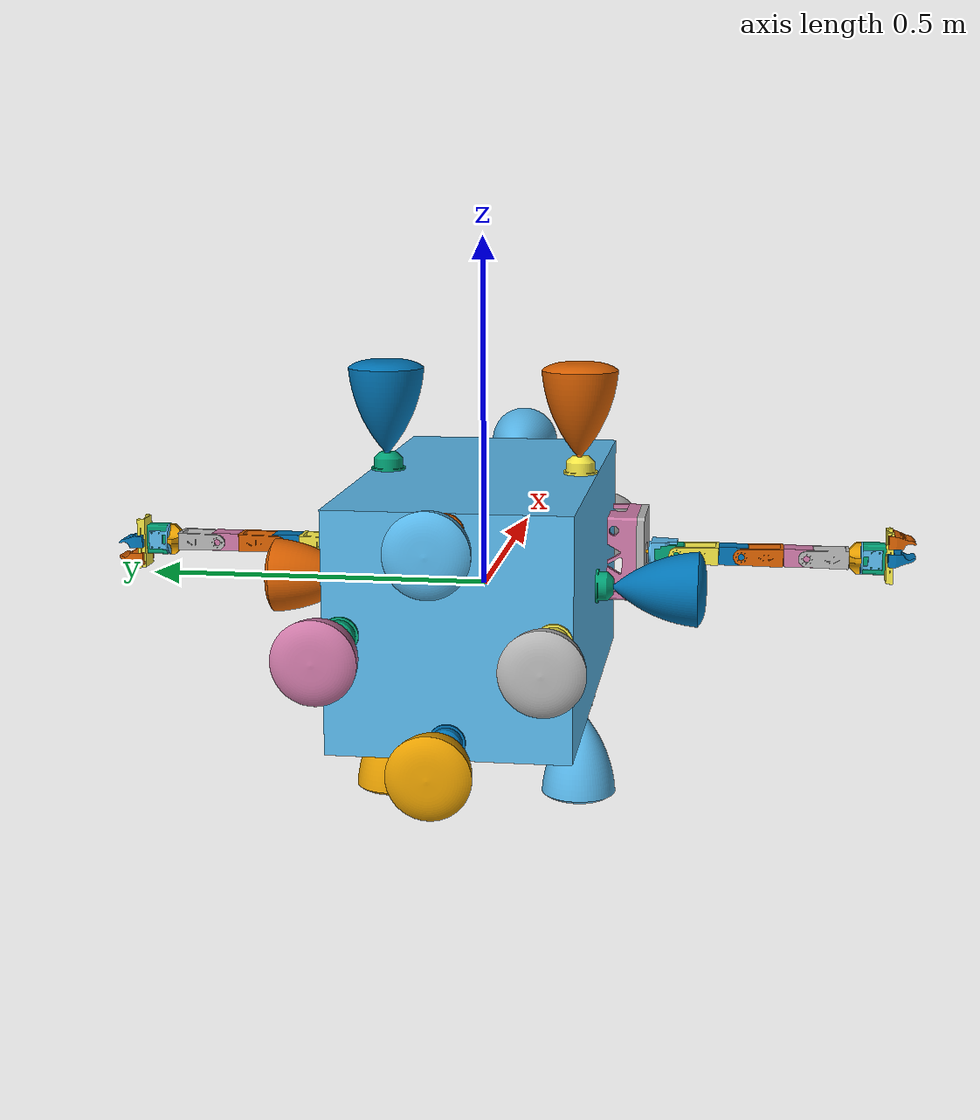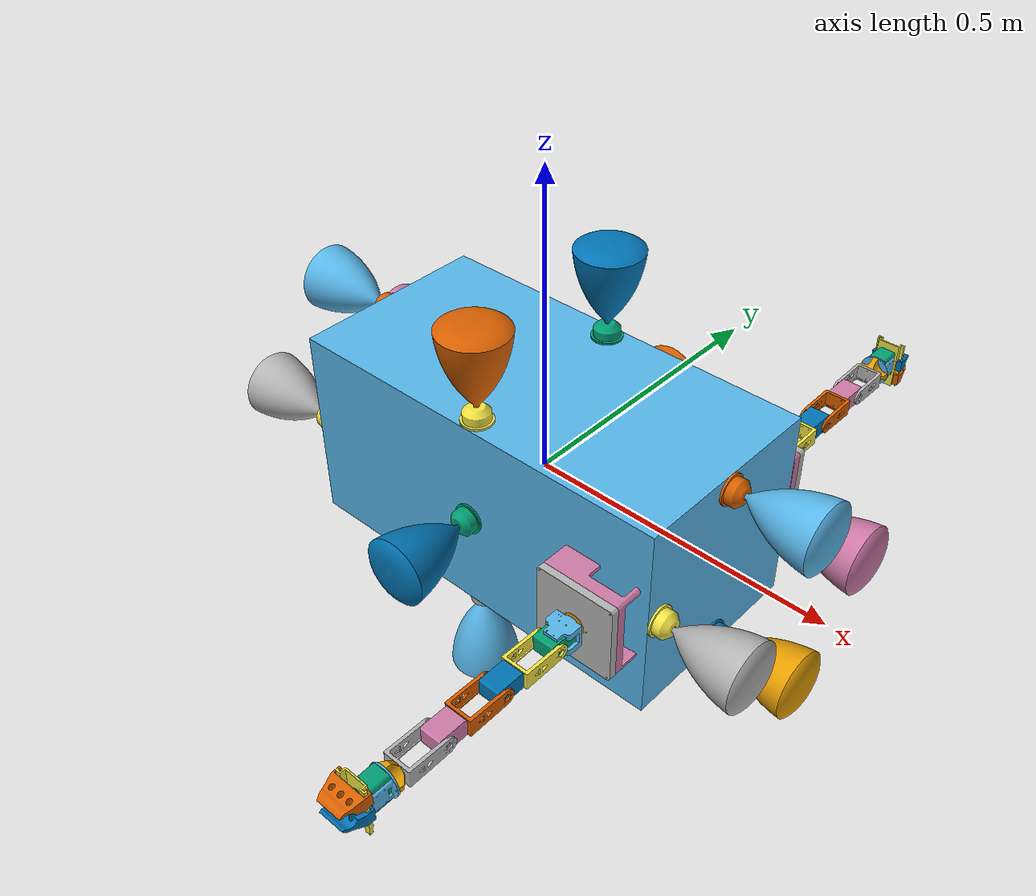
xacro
<?xml version="1.0"?>
<robot xmlns:xacro="http://wiki.ros.org/xacro" name="polysat">
  <xacro:arg name="namespace" default="polysat"/>
  <xacro:arg name="debug" default="false"/>
  <xacro:arg name="inertial_reference_frame" default="world"/>
  <xacro:arg name="controller_type" default="effort"/>
  <xacro:property name="controller" value="$(arg controller_type)"/>

  <xacro:include filename="$(find polysat_perseus_description)/urdf/polysat_base.xacro"/>
  <xacro:polysat_base namespace="$(arg namespace)"/>

  <!-- perseus -->
  <xacro:include filename="$(find perseus_description)/urdf/perseus.urdf.xacro"/>

    <xacro:arg name="transmission_hw_interface" default="hardware_interface/EffortJointInterface"/>

  <xacro:perseus_arm transmission_hw_interface="$(arg transmission_hw_interface)" namespace="perseus_r"/>
  <xacro:perseus_arm transmission_hw_interface="$(arg transmission_hw_interface)" namespace="perseus_l"/>

  <joint name="perseus_l_anchor" type="fixed">
    <parent link="$(arg namespace)/base_link"/>
    <child link="perseus_l/base"/>
    <origin rpy="0 -3.14159265 0" xyz="0.25 0.15 -0.00"/>
  </joint>
  <joint name="perseus_r_anchor" type="fixed">
    <parent link="$(arg namespace)/base_link"/>
    <child link="perseus_r/base"/>
    <origin rpy="3.14159265 3.14159265 0" xyz="0.25 -0.15 -0.00"/>
  </joint>

</robot>

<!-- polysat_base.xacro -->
<robot name="polysat" xmlns:xacro="https://www.ros.org/wiki/xacro">

  <xacro:arg name="namespace" default="polysat"/>

  <xacro:include filename="$(find polysat_perseus_description)/urdf/polysat_thrusters.xacro"/>
  <xacro:include filename="$(find polysat_perseus_description)/urdf/polysat_thruster_visuals.xacro"/>

  <xacro:macro name="polysat_base" params="namespace">
    <xacro:property name="sf" value="0.33"/>
    <!-- "Dummy base link to eliminate root link inertia warning -->
    <link name="$(arg namespace)/base_link"/>

    <!-- Start of main robot body -->
    <link name="$(arg namespace)/polysat_link">
      <inertial>
        <origin xyz="0 0 0" rpy="0 0 0"/>
        <mass value="50.0"/>
        <inertia
          ixx="10.0" ixy="0.0" ixz="0.0"
          iyy="10.0" iyz="0.0"
          izz="10.0"/>
      </inertial>
      <visual>
        <origin xyz="${sf*0} ${sf*0} ${sf*0}" rpy="0 0 0"/>
        <geometry>
          <box size="${sf*2} ${sf*1} ${sf*1}"/>
        </geometry>
      </visual>
      <collision>
        <origin xyz="${sf*0} ${sf*0} ${sf*0}" rpy="0 0 0"/>
        <geometry>
          <box size="${sf*2} ${sf*1} ${sf*1}"/>
        </geometry>
      </collision>
    </link>

    <!-- Connect dummy link to main link -->
    <joint name="$(arg namespace)/polysat_base_joint" type="fixed">
      <origin xyz="0 0 0" rpy="0 0 0"/>
      <parent link="$(arg namespace)/base_link"/>
      <child link="$(arg namespace)/polysat_link"/>
    </joint>

    <!-- Add thruster visuals -->
    <!-- Top -->
    <xacro:thruster_visual_macro namespace="$(arg namespace)" thruster_id="5" sfac="${sf}" x="${sf*-0.075}" y="${sf*(0.5-0.15)}" z="${sf*0.5}" R="0" P="0" Y="0"/>
    <xacro:thruster_visual_macro namespace="$(arg namespace)" thruster_id="4" sfac="${sf}" x="${sf*-0.075}" y="${sf*-0.5}" z="${sf*0.5}" R="0" P="0" Y="0"/>
    <xacro:thrust_plume_visual_macro namespace="$(arg namespace)" thruster_id="6" sfac="${sf}" x="${sf*-0.17}" y="${sf*0.595}" z="${sf*0.55}" R="${pi/2}" P="0" Y="0"/>
    <xacro:thrust_plume_visual_macro namespace="$(arg namespace)" thruster_id="7" sfac="${sf}" x="${sf*-0.17}" y="${sf*-0.255}" z="${sf*0.55}" R="${pi/2}" P="0" Y="0"/>
    <!-- Bottom -->
    <xacro:thruster_visual_macro namespace="$(arg namespace)" thruster_id="6" sfac="${sf}" x="${sf*-0.15/2}" y="${sf*0.5}" z="${sf*-0.5}" R="${pi}" P="0" Y="0"/>
    <xacro:thruster_visual_macro namespace="$(arg namespace)" thruster_id="7" sfac="${sf}" x="${sf*-0.15/2}" y="${sf*(-0.5+0.15)}" z="${sf*-0.5}" R="${pi}" P="0" Y="0"/>
    <xacro:thrust_plume_visual_macro namespace="$(arg namespace)" thruster_id="5" sfac="${sf}" x="${sf*-0.17}" y="${sf*0.255}" z="${sf*-0.55}" R="${-pi/2}" P="0" Y="0"/>
    <xacro:thrust_plume_visual_macro namespace="$(arg namespace)" thruster_id="4" sfac="${sf}" x="${sf*-0.17}" y="${sf*-0.595}" z="${sf*-0.55}" R="${-pi/2}" P="0" Y="0"/>
    <!-- Front -->
    <xacro:thruster_visual_macro namespace="$(arg namespace)" thruster_id="8" sfac="${sf}" x="${sf*1}" y="${sf*(0.5-0.15)}" z="${sf*(0+0.075)}" R="0" P="${pi/2}" Y="0"/>
    <xacro:thruster_visual_macro namespace="$(arg namespace)" thruster_id="9" sfac="${sf}" x="${sf*1}" y="${sf*-0.5}" z="${sf*(0+0.075)}" R="${0}" P="${pi/2}" Y="0"/>
    <xacro:thruster_visual_macro namespace="$(arg namespace)" thruster_id="1" sfac="${sf}" x="${sf*1}" y="${sf*-0.15/2}" z="${sf*(-0.5+0.15)}" R="${0}" P="${pi/2}" Y="0"/>
    <xacro:thruster_visual_macro namespace="$(arg namespace)" thruster_id="0" sfac="${sf}" x="${sf*1}" y="${sf*-0.15/2}" z="${sf*0.5}" R="${0}" P="${pi/2}" Y="0"/>
    <xacro:thrust_plume_visual_macro namespace="$(arg namespace)" thruster_id="10" sfac="${sf}" x="${sf*1.05}" y="${sf*0.595}" z="${sf*-0.16}" R="${0}" P="0" Y="${-pi/2}"/>
    <xacro:thrust_plume_visual_macro namespace="$(arg namespace)" thruster_id="11" sfac="${sf}" x="${sf*1.05}" y="${sf*-0.26}" z="${sf*-0.17}" R="${0}" P="0" Y="${-pi/2}"/>
    <xacro:thrust_plume_visual_macro namespace="$(arg namespace)" thruster_id="3" sfac="${sf}" x="${sf*1.05}" y="${sf*0.17}" z="${sf*-0.59}" R="${0}" P="0" Y="${-pi/2}"/>
    <xacro:thrust_plume_visual_macro namespace="$(arg namespace)" thruster_id="2" sfac="${sf}" x="${sf*1.05}" y="${sf*0.17}" z="${sf*0.26}" R="${0}" P="0" Y="${-pi/2}"/>
    <!-- Back -->
    <xacro:thruster_visual_macro namespace="$(arg namespace)" thruster_id="10" sfac="${sf}" x="${sf*-1}" y="${sf*(0.5-0.15)}" z="${sf*(0-0.075)}" R="0" P="${-pi/2}" Y="0"/>
    <xacro:thruster_visual_macro namespace="$(arg namespace)" thruster_id="11" sfac="${sf}" x="${sf*-1}" y="${sf*-0.5}" z="${sf*(0-0.075)}" R="${0}" P="${-pi/2}" Y="0"/>
    <xacro:thruster_visual_macro namespace="$(arg namespace)" thruster_id="3" sfac="${sf}" x="${sf*-1}" y="${sf*(0-0.075)}" z="${sf*-0.5}" R="${0}" P="${-pi/2}" Y="0"/>
    <xacro:thruster_visual_macro namespace="$(arg namespace)" thruster_id="2" sfac="${sf}" x="${sf*-1}" y="${sf*(0-0.075)}" z="${sf*(0.5-0.15)}" R="${0}" P="${-pi/2}" Y="0"/>
    <xacro:thrust_plume_visual_macro namespace="$(arg namespace)" thruster_id="8" sfac="${sf}" x="${sf*-1.05}" y="${sf*0.26}" z="${sf*-0.16}" R="${0}" P="0" Y="${pi/2}"/>
    <xacro:thrust_plume_visual_macro namespace="$(arg namespace)" thruster_id="9" sfac="${sf}" x="${sf*-1.05}" y="${sf*-0.595}" z="${sf*-0.17}" R="${0}" P="0" Y="${pi/2}"/>
    <xacro:thrust_plume_visual_macro namespace="$(arg namespace)" thruster_id="1" sfac="${sf}" x="${sf*-1.05}" y="${sf*-0.17}" z="${sf*-0.59}" R="${0}" P="0" Y="${pi/2}"/>
    <xacro:thrust_plume_visual_macro namespace="$(arg namespace)" thruster_id="0" sfac="${sf}" x="${sf*-1.05}" y="${sf*-0.17}" z="${sf*0.26}" R="${0}" P="0" Y="${pi/2}"/>
    <!-- Sides -->
    <xacro:thruster_visual_macro namespace="$(arg namespace)" thruster_id="12" sfac="${sf}" x="${sf*-0.15/2}" y="${sf*-0.5}" z="${sf*-0.15/2}" R="${pi/2}" P="${0}" Y="0"/>
    <xacro:thruster_visual_macro namespace="$(arg namespace)" thruster_id="13" sfac="${sf}" x="${sf*-0.15/2}" y="${sf*0.5}" z="${sf*0.15/2}" R="${-pi/2}" P="${0}" Y="${0}"/>
    <xacro:thrust_plume_visual_macro namespace="$(arg namespace)" thruster_id="12" sfac="${sf}" x="${sf*0.17}" y="${sf*-0.55}" z="${sf*-0.17}" R="${0}" P="0" Y="${pi}"/>
    <xacro:thrust_plume_visual_macro namespace="$(arg namespace)" thruster_id="13" sfac="${sf}" x="${sf*0.17}" y="${sf*0.55}" z="${sf*0.17}" R="${0}" P="${pi}" Y="${0}"/>

    <!-- Add maneuvering thrusters -->
    <xacro:thruster_macro namespace="${namespace}" thruster_id="0">
      <origin xyz="0.5 0 0.5" rpy="0 0 0"/>
    </xacro:thruster_macro>
    <xacro:thruster_macro namespace="${namespace}" thruster_id="1">
      <origin xyz="0.5 0 -0.5" rpy="0 0 0"/>
    </xacro:thruster_macro>
    <xacro:thruster_macro namespace="${namespace}" thruster_id="2">
      <origin xyz="-0.5 0 0.5" rpy="0 0 3.1415926535"/>
    </xacro:thruster_macro>
    <xacro:thruster_macro namespace="${namespace}" thruster_id="3">
      <origin xyz="-0.5 0 -0.5" rpy="0 0 3.1415926535"/>
    </xacro:thruster_macro>

    <xacro:thruster_macro namespace="${namespace}" thruster_id="4">
      <origin xyz="0 0.5 0.5" rpy="0 -1.5707963268 0"/>
    </xacro:thruster_macro>
    <xacro:thruster_macro namespace="${namespace}" thruster_id="5">
      <origin xyz="0 -0.5 0.5" rpy="0 -1.5707963268 0"/>
    </xacro:thruster_macro>
    <xacro:thruster_macro namespace="${namespace}" thruster_id="6">
      <origin xyz="0 0.5 -0.5" rpy="0 1.5707963268 0"/>
    </xacro:thruster_macro>
    <xacro:thruster_macro namespace="${namespace}" thruster_id="7">
      <origin xyz="0 -0.5 -0.5" rpy="0 1.5707963268 0"/>
    </xacro:thruster_macro>

    <xacro:thruster_macro namespace="${namespace}" thruster_id="8">
      <origin xyz="0.5 0.5 0" rpy="0 0 0"/>
    </xacro:thruster_macro>
    <xacro:thruster_macro namespace="${namespace}" thruster_id="9">
      <origin xyz="0.5 -0.5 0" rpy="0 0 0"/>
    </xacro:thruster_macro>
    <xacro:thruster_macro namespace="${namespace}" thruster_id="10">
      <origin xyz="-0.5 0.5 0" rpy="0 0 3.1415926535"/>
    </xacro:thruster_macro>
    <xacro:thruster_macro namespace="${namespace}" thruster_id="11">
      <origin xyz="-0.5 -0.5 0" rpy="0 0 3.1415926535"/>
    </xacro:thruster_macro>

    <xacro:thruster_macro namespace="${namespace}" thruster_id="12">
      <origin xyz="0 0.5 0" rpy="0 0 1.5707963268"/>
    </xacro:thruster_macro>
    <xacro:thruster_macro namespace="${namespace}" thruster_id="13">
      <origin xyz="0 -0.5 0" rpy="0 0 -1.5707963268"/>
    </xacro:thruster_macro>

    <gazebo>
      <plugin name="gazebo_ros_control" filename="libgazebo_ros_control.so">
      </plugin>
    </gazebo>

    <xacro:arg name="inertial_reference_frame" default="world"/>

    <xacro:include filename="$(find sc_gazebo_plugins)/urdf/imu.xacro"/>
    <xacro:default_imu_macro
      namespace="$(arg namespace)"
      parent_link="$(arg namespace)/base_link"
      inertial_reference_frame="$(arg inertial_reference_frame)">
      <origin xyz="0 0 0" rpy="0 0 0"/>
    </xacro:default_imu_macro>

    <xacro:include filename="$(find sc_gazebo_plugins)/urdf/pose_3d.xacro"/>
    <xacro:default_pose_3d
      namespace="$(arg namespace)"
      parent_link="$(arg namespace)/base_link">
    </xacro:default_pose_3d>
   </xacro:macro>
</robot>

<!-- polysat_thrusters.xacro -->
<robot xmlns:xacro="http://www.ros.org/wiki/xacro">

  <xacro:macro name="thruster_macro" params="namespace thruster_id *origin">
    <link name="${namespace}/thruster_${thruster_id}">
      <xacro:box_inertial x="0.001" y="0.001" z="0.001" mass="0.0001">
        <origin xyz="0 0 0" rpy="0 0 0"/>
      </xacro:box_inertial>
      <visual>
        <geometry>
          <cylinder length="0.000001" radius="0.0000001"/>
        </geometry>
        <origin rpy="0 0 0" xyz="0 0 0"/>
      </visual>
      <collision>
        <geometry>
          <cylinder length="0.0000001" radius="0.0000001"/>
        </geometry>
        <origin xyz="0 0 0" rpy="0 0 0"/>
      </collision>
    </link>

    <joint name="${namespace}/thruster_${thruster_id}_joint" type="continuous">
      <xacro:insert_block name="origin"/>
      <parent link="${namespace}/base_link"/>
      <child link="${namespace}/thruster_${thruster_id}"/>
      <axis xyz="1 0 0"/>
      <limit effort="0" lower="0" upper="0" velocity="0"/>
    </joint>

    <gazebo>
      <plugin name="${namespace}_${thruster_id}_thruster_model" filename="libsc_gazebo_thrust_plugin.so">
        <thruster>
          <linkName>${namespace}/thruster_${thruster_id}</linkName>
          <jointName>${namespace}/thruster_${thruster_id}_joint</jointName>
          <cmdTopic>${namespace}/thrusters/thruster_${thruster_id}</cmdTopic>
          <angleTopic>${namespace}/thrusters/thruster_${thruster_id}_angle</angleTopic>
          <enableAngle>false</enableAngle>
        </thruster>
      </plugin>
    </gazebo>

    <gazebo reference="${namespace}/thruster_${thruster_id}">
      <selfCollide>false</selfCollide>
    </gazebo>
  </xacro:macro>

  <xacro:macro name="box_inertial" params="x y z mass *origin">
    <inertial>
      <mass value="${mass}"/>
      <xacro:insert_block name="origin"/>
      <inertia ixx="0.00001" ixy="0.0" ixz="0.0"
               iyy="0.00001" iyz="0.0"
               izz="0.00001"/>
    </inertial>
  </xacro:macro>
</robot>

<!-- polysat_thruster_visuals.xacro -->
<robot xmlns:xacro="http://www.ros.org/wiki/xacro">

  <xacro:macro name="thruster_visual_macro" params="namespace thruster_id sfac x y z R P Y">
    <link name="${namespace}/thruster_${thruster_id}_visual">
      <xacro:box_inertial x="0.001" y="0.001" z="0.001" mass="0.0001">
        <origin xyz="0 0 0" rpy="0 0 0"/>
      </xacro:box_inertial>
      <visual>
        <origin xyz="0 0 0" rpy="0 0 0"/>
        <geometry>
          <mesh filename="file://$(find polysat_description)/meshes/thruster.stl" scale="${sfac*0.001} ${sfac*0.001} ${sfac*0.001}"/>
        </geometry>
      </visual>
      <collision>
        <origin xyz="0 0 0" rpy="0 0 0"/>
        <geometry>
          <mesh filename="file://$(find polysat_description)/meshes/thruster.stl" scale="${sfac*0.001} ${sfac*0.001} ${sfac*0.001}"/>
        </geometry>
      </collision>
    </link>

    <joint name="${namespace}/thruster_${thruster_id}_visual_joint" type="fixed">
      <origin xyz="${x} ${y} ${z}" rpy="${R} ${P} ${Y}"/>
      <parent link="${namespace}/base_link"/>
      <child link="${namespace}/thruster_${thruster_id}_visual"/>
    </joint>
  </xacro:macro>

  <xacro:macro name="thrust_plume_visual_macro" params="namespace thruster_id sfac x y z R P Y">
    <link name="${namespace}/thrust_plume_${thruster_id}_visual">
      <xacro:box_inertial x="0.001" y="0.001" z="0.001" mass="0.0001">
        <origin xyz="0 0 0" rpy="0 0 0"/>
      </xacro:box_inertial>
      <visual>
        <origin xyz="0 0 0" rpy="0 0 0"/>
        <geometry>
          <mesh filename="file://$(find polysat_description)/meshes/thrust_plume.stl" scale="${sfac*0.001} ${sfac*0.001} ${sfac*0.001}"/>
        </geometry>
        <plugin filename="libsc_thrust_visual_plugin.so" name="thrust_visual_${thruster_id}">
          <thrust_color>1 0 0 1</thrust_color>
          <thruster_number>${thruster_id}</thruster_number>
        </plugin>
      </visual>
      <collision>
        <origin xyz="0 0 0" rpy="0 0 0"/>
        <geometry>
          <box size="0.0001 0.0001 0.0001"/>
        </geometry>
      </collision>
    </link>

    <joint name="${namespace}/thrust_plume_${thruster_id}_visual_joint" type="fixed">
      <origin xyz="${x} ${y} ${z}" rpy="${R} ${P} ${Y}"/>
      <parent link="${namespace}/base_link"/>
      <child link="${namespace}/thrust_plume_${thruster_id}_visual"/>
    </joint>
  </xacro:macro>

</robot>

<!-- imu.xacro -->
<robot xmlns:xacro="http://www.ros.org/wiki/xacro">
  <!-- Macro for a minimal collision block (for when you do not want collision block but gazebo needs one) -->
  <xacro:macro name="no_collision">
    <collision>
      <geometry>
        <cylinder length="${0.000001}" radius="${0.000001}" />
      </geometry>
      <origin xyz="0 0 0" rpy="0 ${0.5*pi} 0"/>
    </collision>
  </xacro:macro>

  <xacro:macro name="default_imu" params="namespace parent_link *origin">
    <!-- ADIS16448 IMU. -->
    <xacro:imu_plugin_macro
      namespace="${namespace}"
      imu_suffix=""
      parent_link="${parent_link}"
      imu_topic="imu"
      mass_imu_sensor="0.015"
      gyroscope_noise_density="0.0003394"
      gyroscope_random_walk="0.000038785"
      gyroscope_bias_correlation_time="1000.0"
      gyroscope_turn_on_bias_sigma="0.0087"
      accelerometer_noise_density="0.004"
      accelerometer_random_walk="0.006"
      accelerometer_bias_correlation_time="300.0"
      accelerometer_turn_on_bias_sigma="0.1960"
      orientation_noise="0.01"
      enable_local_ned_frame="false"
      reference_frame="world"
      update_rate="50">
      <inertia ixx="0.00001" ixy="0.0" ixz="0.0" iyy="0.00001" iyz="0.0" izz="0.00001" />
      <xacro:insert_block name="origin" />
    </xacro:imu_plugin_macro>
  </xacro:macro>

  <xacro:macro name="default_imu_macro" params="namespace parent_link *origin inertial_reference_frame">
    <!-- ADIS16448 IMU. -->
    <xacro:if value="${inertial_reference_frame == 'world'}">
      <xacro:default_imu_enu
        namespace="${namespace}"
        parent_link="${parent_link}">
        <xacro:insert_block name="origin" />
      </xacro:default_imu_enu>
    </xacro:if>

    <xacro:if value="${inertial_reference_frame == 'world_ned'}">
      <xacro:default_imu_ned
        namespace="${namespace}"
        parent_link="${parent_link}">
        <xacro:insert_block name="origin" />
      </xacro:default_imu_ned>
    </xacro:if>
  </xacro:macro>

  <xacro:macro name="default_imu_enu" params="namespace parent_link *origin">
    <!-- ADIS16448 IMU. -->
    <xacro:imu_plugin_macro
      namespace="${namespace}"
      imu_suffix=""
      parent_link="${parent_link}"
      imu_topic="imu"
      mass_imu_sensor="0.015"
      gyroscope_noise_density="0.0003394"
      gyroscope_random_walk="0.000038785"
      gyroscope_bias_correlation_time="1000.0"
      gyroscope_turn_on_bias_sigma="0.0087"
      accelerometer_noise_density="0.004"
      accelerometer_random_walk="0.006"
      accelerometer_bias_correlation_time="300.0"
      accelerometer_turn_on_bias_sigma="0.1960"
      orientation_noise="0.01"
      enable_local_ned_frame="false"
      reference_frame="world"
      update_rate="50">
      <inertia ixx="0.00001" ixy="0.0" ixz="0.0" iyy="0.00001" iyz="0.0" izz="0.00001" />
      <xacro:insert_block name="origin" />>
    </xacro:imu_plugin_macro>
  </xacro:macro>

  <xacro:macro name="default_imu_ned" params="namespace parent_link *origin">
    <!-- ADIS16448 IMU. -->
    <xacro:imu_plugin_macro
      namespace="${namespace}"
      imu_suffix=""
      parent_link="${parent_link}"
      imu_topic="imu"
      mass_imu_sensor="0.015"
      gyroscope_noise_density="0.0003394"
      gyroscope_random_walk="0.000038785"
      gyroscope_bias_correlation_time="1000.0"
      gyroscope_turn_on_bias_sigma="0.0087"
      accelerometer_noise_density="0.004"
      accelerometer_random_walk="0.006"
      accelerometer_bias_correlation_time="300.0"
      accelerometer_turn_on_bias_sigma="0.1960"
      orientation_noise="0.01"
      enable_local_ned_frame="true"
      reference_frame="world_ned"
      update_rate="50">
      <inertia ixx="0.00001" ixy="0.0" ixz="0.0" iyy="0.00001" iyz="0.0" izz="0.00001" />
      <xacro:insert_block name="origin" />
    </xacro:imu_plugin_macro>
  </xacro:macro>

  <!-- Macro to add an IMU. -->
  <xacro:macro name="imu_plugin_macro"
    params="namespace imu_suffix parent_link imu_topic
      mass_imu_sensor gyroscope_noise_density gyroscope_random_walk
      gyroscope_bias_correlation_time gyroscope_turn_on_bias_sigma
      accelerometer_noise_density accelerometer_random_walk
      accelerometer_bias_correlation_time accelerometer_turn_on_bias_sigma
      orientation_noise
      update_rate reference_frame
      enable_local_ned_frame
      *inertia *origin">
    <!-- IMU link -->
    <link name="${namespace}/imu${imu_suffix}_link">
      <inertial>
        <xacro:insert_block name="inertia" />
        <mass value="${mass_imu_sensor}" />  <!-- [kg] -->
        <origin xyz="0 0 0" rpy="0 0 0" />
      </inertial>
    </link>

    <!-- IMU joint -->
    <joint name="${namespace}/imu${imu_suffix}_joint" type="revolute">
      <xacro:insert_block name="origin" />
      <parent link="${parent_link}" />
      <child link="${namespace}/imu${imu_suffix}_link" />
      <limit upper="0" lower="0" effort="0" velocity="0" />
      <axis xyz="1 0 0"/>
    </joint>

    <gazebo>
      <plugin filename="libsc_imu_gazebo_plugin.so" name="libsc_imu${imu_suffix}_gazebo_plugin">
      <!-- A good description of the IMU parameters can be found in the kalibr documentation:
           https://github.com/ethz-asl/kalibr/wiki/IMU-Noise-Model-and-Intrinsics -->
        <robot_namespace>${namespace}</robot_namespace> <!-- (string, required): ros namespace in which the messages are published -->
        <link_name>${namespace}/imu${imu_suffix}_link</link_name> <!-- (string, required): name of the body which holds the IMU sensor -->
        <sensor_topic>${imu_topic}</sensor_topic> <!-- (string): name of the sensor output topic and prefix of service names (defaults to imu) -->

        <gyroscope_noise_density>${gyroscope_noise_density}</gyroscope_noise_density> <!-- Gyroscope noise density (two-sided spectrum) [rad/s/sqrt(Hz)] -->
        <gyroscope_random_walk>${gyroscope_random_walk}</gyroscope_random_walk> <!-- Gyroscope bias random walk [rad/s/s/sqrt(Hz)] -->
        <gyroscope_bias_correlation_time>${gyroscope_bias_correlation_time}</gyroscope_bias_correlation_time> <!-- Gyroscope bias correlation time constant [s] -->
        <gyroscope_turn_on_bias_sigma>${gyroscope_turn_on_bias_sigma}</gyroscope_turn_on_bias_sigma> <!-- Gyroscope turn on bias standard deviation [rad/s] -->

        <accelerometer_noise_density>${accelerometer_noise_density}</accelerometer_noise_density> <!-- Accelerometer noise density (two-sided spectrum) [m/s^2/sqrt(Hz)] -->
        <accelerometer_random_walk>${accelerometer_random_walk}</accelerometer_random_walk> <!-- Accelerometer bias random walk. [m/s^2/s/sqrt(Hz)] -->
        <accelerometer_bias_correlation_time>${accelerometer_bias_correlation_time}</accelerometer_bias_correlation_time> <!-- Accelerometer bias correlation time constant [s] -->
        <accelerometer_turn_on_bias_sigma>${accelerometer_turn_on_bias_sigma}</accelerometer_turn_on_bias_sigma> <!-- Accelerometer turn on bias standard deviation [m/s^2] -->
        <orientation_noise>${orientation_noise}</orientation_noise>

        <update_rate>${update_rate}</update_rate> <!-- Update period of accelerometer and gyroscope [s] -->
        <enable_gazebo_messages>false</enable_gazebo_messages>
        <enable_local_ned_frame>${enable_local_ned_frame}</enable_local_ned_frame>
        <static_reference_frame>${reference_frame}</static_reference_frame>
      </plugin>
    </gazebo>
  </xacro:macro>

</robot>

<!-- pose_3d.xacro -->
<robot xmlns:xacro="http://www.ros.org/wiki/xacro">
  <xacro:macro name="pose_3d_macro" params="namespace suffix parent_link topic update_rate *origin noise_sigma reference_frame publish_ned_odom noise_amplitude">
    <!--Mount a 3D pose sensor-->
    <link name="${namespace}/pose_sensor_link_${suffix}">
      <inertial>
        <inertia ixx="0.000001" ixy="0.0" ixz="0.0" iyy="0.000001" iyz="0.0" izz="0.000001"/>
        <mass value="0.00001"/>
        <origin xyz="0 0 0" rpy="0 0 0"/>
      </inertial>
    </link>

    <joint name="${namespace}/pose_sensor_${suffix}_joint" type="revolute">
      <xacro:insert_block name="origin"/>
      <axis xyz="0 0 1"/>
      <parent link="${parent_link}"/>
      <child link="${namespace}/pose_sensor_link_${suffix}"/>
      <limit effort="0" lower="0" upper="0" velocity="0"/>
    </joint>

    <gazebo>
      <plugin name="pose_3d_plugin" filename="libsc_pose_gt_plugin.so">
        <robot_namespace>${namespace}</robot_namespace>
        <link_name>${namespace}/base_link</link_name>
        <sensor_topic>${topic}</sensor_topic>
        <static_reference_frame>${reference_frame}</static_reference_frame>
        <noise_sigma>${noise_sigma}</noise_sigma>
        <noise_amplitude>${noise_amplitude}</noise_amplitude>
        <update_rate>${update_rate}</update_rate>
        <enable_gazebo_messages>false</enable_gazebo_messages>
        <publish_ned_odom>${publish_ned_odom}</publish_ned_odom>
      </plugin>
    </gazebo>
  </xacro:macro>

  <xacro:macro name="default_pose_3d" params="namespace parent_link">
    <xacro:pose_3d_macro
      namespace="${namespace}"
      parent_link="${parent_link}"
      topic="pose_gt"
      update_rate="20"
      noise_sigma="0.0"
      noise_amplitude="0.0"
      suffix="default"
      reference_frame="world"
      publish_ned_odom="false">
      <origin xyz="0 0 0" rpy="0 0 0"/>
    </xacro:pose_3d_macro>
  </xacro:macro>

</robot>

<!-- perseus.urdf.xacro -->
<robot xmlns:xacro="http://wiki.ros.org/xacro">
  <xacro:include filename="$(find perseus_description)/urdf/perseus.transmission.xacro"/>
  <xacro:include filename="$(find perseus_description)/urdf/perseus.gazebo.xacro"/>

  <xacro:macro name="perseus_arm" params="transmission_hw_interface namespace">
    <xacro:property name="scale" value="0.001"/>
    <xacro:property name="joint_scale" value="1"/>
    <!-- Start of main robot body -->
    <link name="${namespace}/base">
      <inertial>
        <origin rpy="0 0 0" xyz="0.009606900148155705 0.025047580656759237 0.0006409385755152207"/>
        <mass value="0.20859614956718134"/>
        <inertia ixx="0.000557" ixy="-1e-06" ixz="-4.8e-05" iyy="0.000924" iyz="-3e-06" izz="0.000556"/>
      </inertial>
      <visual>
        <origin rpy="0 0 0" xyz="0 0 0"/>
        <geometry>
          <mesh filename="package://perseus_description/meshes/base_link.stl" scale="${scale} ${scale} ${scale}"/>
        </geometry>
      </visual>
      <collision>
        <origin rpy="0 0 0" xyz="0 0 0"/>
        <geometry>
          <mesh filename="package://perseus_description/meshes/base_link.stl" scale="${scale} ${scale} ${scale}"/>
        </geometry>
      </collision>
    </link>

    <link name="${namespace}/basePlate_v18_1">
      <inertial>
        <origin rpy="0 0 0" xyz="0.06080674862882992 0.007989157863473588 0.060697501122834334"/>
        <mass value="0.10739714114224669"/>
        <inertia ixx="0.000185" ixy="0.0" ixz="-0.0" iyy="0.00038" iyz="0.0" izz="0.000198"/>
      </inertial>
      <visual>
        <origin rpy="0 0 0" xyz="0.060705 -0.060123 0.060773"/>
        <geometry>
          <mesh filename="package://perseus_description/meshes/basePlate_v18_1.stl" scale="${scale} ${scale} ${scale}"/>
        </geometry>
      </visual>
      <collision>
        <origin rpy="0 0 0" xyz="0.060705 -0.060123 0.060773"/>
        <geometry>
          <mesh filename="package://perseus_description/meshes/basePlate_v18_1.stl" scale="${scale} ${scale} ${scale}"/>
        </geometry>
      </collision>
    </link>

    <link name="${namespace}/Stepper_v5_1">
      <inertial>
        <origin rpy="0 0 0" xyz="5.218509840461329e-08 -0.009658638044550236 3.7698044210816435e-07"/>
        <mass value="0.164439959012558"/>
        <inertia ixx="1.9e-05" ixy="-0.0" ixz="-0.0" iyy="2.7e-05" iyz="0.0" izz="2e-05"/>
      </inertial>
      <visual>
        <origin rpy="0 0 0" xyz="-0.000104 -0.067623 2.3e-05"/>
        <geometry>
          <mesh filename="package://perseus_description/meshes/Stepper_v5_1.stl" scale="${scale} ${scale} ${scale}"/>
        </geometry>
      </visual>
      <collision>
        <origin rpy="0 0 0" xyz="-0.000104 -0.067623 2.3e-05"/>
        <geometry>
          <mesh filename="package://perseus_description/meshes/Stepper_v5_1.stl" scale="${scale} ${scale} ${scale}"/>
        </geometry>
      </collision>
    </link>

    <link name="${namespace}/link1_v12_1">
      <inertial>
        <origin rpy="0 0 0" xyz="-0.0005835884695255211 0.011699826982647002 2.0584927118683997e-05"/>
        <mass value="0.026558895460486103"/>
        <inertia ixx="9e-06" ixy="0.0" ixz="-0.0" iyy="1e-05" iyz="0.0" izz="8e-06"/>
      </inertial>
      <visual>
        <origin rpy="0 0 0" xyz="-0.000104 -0.080623 2.3e-05"/>
        <geometry>
          <mesh filename="package://perseus_description/meshes/link1_v12_1.stl" scale="${scale} ${scale} ${scale}"/>
        </geometry>
      </visual>
      <collision>
        <origin rpy="0 0 0" xyz="-0.000104 -0.080623 2.3e-05"/>
        <geometry>
          <mesh filename="package://perseus_description/meshes/link1_v12_1.stl" scale="${scale} ${scale} ${scale}"/>
        </geometry>
      </collision>
    </link>

    <link name="${namespace}/Dynamixel_1_1">
      <inertial>
        <origin rpy="0 0 0" xyz="-3.990798697923084e-05 0.023425508667773945 3.9032703642453347e-07"/>
        <mass value="0.356701544919362"/>
        <inertia ixx="8.7e-05" ixy="0.0" ixz="0.0" iyy="5.9e-05" iyz="-0.0" izz="9.9e-05"/>
      </inertial>
      <visual>
        <origin rpy="0 0 0" xyz="-0.000104 -0.085773 2.3e-05"/>
        <geometry>
          <mesh filename="package://perseus_description/meshes/Dynamixel_1_1.stl" scale="${scale} ${scale} ${scale}"/>
        </geometry>
      </visual>
      <collision>
        <origin rpy="0 0 0" xyz="-0.000104 -0.085773 2.3e-05"/>
        <geometry>
          <mesh filename="package://perseus_description/meshes/Dynamixel_1_1.stl" scale="${scale} ${scale} ${scale}"/>
        </geometry>
      </collision>
    </link>

    <link name="${namespace}/Link_v5_1">
      <inertial>
        <origin rpy="0 0 0" xyz="0.019404821558247024 0.037443419960172294 3.83299057001476e-07"/>
        <mass value="0.01662330410690611"/>
        <inertia ixx="1e-05" ixy="-0.0" ixz="0.0" iyy="7e-06" iyz="-0.0" izz="1.5e-05"/>
      </inertial>
      <visual>
        <origin rpy="0 0 0" xyz="0.018896 -0.121024 2.2e-05"/>
        <geometry>
          <mesh filename="package://perseus_description/meshes/Link_v5_1.stl" scale="${scale} ${scale} ${scale}"/>
        </geometry>
      </visual>
      <collision>
        <origin rpy="0 0 0" xyz="0.018896 -0.121024 2.2e-05"/>
        <geometry>
          <mesh filename="package://perseus_description/meshes/Link_v5_1.stl" scale="${scale} ${scale} ${scale}"/>
        </geometry>
      </collision>
    </link>

    <link name="${namespace}/Dynamixel_2_1">
      <inertial>
        <origin rpy="0 0 0" xyz="-3.9907986979175033e-05 0.023425071019905652 3.055729170690188e-07"/>
        <mass value="0.356701544919362"/>
        <inertia ixx="8.7e-05" ixy="0.0" ixz="0.0" iyy="5.9e-05" iyz="-0.0" izz="9.9e-05"/>
      </inertial>
      <visual>
        <origin rpy="0 0 0" xyz="-0.000504 -0.186324 2.2e-05"/>
        <geometry>
          <mesh filename="package://perseus_description/meshes/Dynamixel_2_1.stl" scale="${scale} ${scale} ${scale}"/>
        </geometry>
      </visual>
      <collision>
        <origin rpy="0 0 0" xyz="-0.000504 -0.186324 2.2e-05"/>
        <geometry>
          <mesh filename="package://perseus_description/meshes/Dynamixel_2_1.stl" scale="${scale} ${scale} ${scale}"/>
        </geometry>
      </collision>
    </link>

    <link name="${namespace}/Link_v5__1__1">
      <inertial>
        <origin rpy="0 0 0" xyz="0.02095482155824711 0.037442982312304 2.985449376563934e-07"/>
        <mass value="0.01662330410690611"/>
        <inertia ixx="1e-05" ixy="-0.0" ixz="0.0" iyy="7e-06" iyz="-0.0" izz="1.5e-05"/>
      </inertial>
      <visual>
        <origin rpy="0 0 0" xyz="0.019496 -0.221575 2.1e-05"/>
        <geometry>
          <mesh filename="package://perseus_description/meshes/Link_v5__1__1.stl" scale="${scale} ${scale} ${scale}"/>
        </geometry>
      </visual>
      <collision>
        <origin rpy="0 0 0" xyz="0.019496 -0.221575 2.1e-05"/>
        <geometry>
          <mesh filename="package://perseus_description/meshes/Link_v5__1__1.stl" scale="${scale} ${scale} ${scale}"/>
        </geometry>
      </collision>
    </link>

    <link name="${namespace}/Dynamixel_3_1">
      <inertial>
        <origin rpy="0 0 0" xyz="-3.990798697908857e-05 0.023424633372037318 2.208187977353406e-07"/>
        <mass value="0.356701544919362"/>
        <inertia ixx="8.7e-05" ixy="0.0" ixz="0.0" iyy="5.9e-05" iyz="-0.0" izz="9.9e-05"/>
      </inertial>
      <visual>
        <origin rpy="0 0 0" xyz="-0.001454 -0.286875 2.1e-05"/>
        <geometry>
          <mesh filename="package://perseus_description/meshes/Dynamixel_3_1.stl" scale="${scale} ${scale} ${scale}"/>
        </geometry>
      </visual>
      <collision>
        <origin rpy="0 0 0" xyz="-0.001454 -0.286875 2.1e-05"/>
        <geometry>
          <mesh filename="package://perseus_description/meshes/Dynamixel_3_1.stl" scale="${scale} ${scale} ${scale}"/>
        </geometry>
      </collision>
    </link>

    <link name="${namespace}/Link_v5__2__1">
      <inertial>
        <origin rpy="0 0 0" xyz="0.02095482155824717 0.037443544664435724 2.1379081833307952e-07"/>
        <mass value="0.01662330410690611"/>
        <inertia ixx="1e-05" ixy="-0.0" ixz="0.0" iyy="7e-06" iyz="-0.0" izz="1.5e-05"/>
      </inertial>
      <visual>
        <origin rpy="0 0 0" xyz="0.018546 -0.322125 2e-05"/>
        <geometry>
          <mesh filename="package://perseus_description/meshes/Link_v5__2__1.stl" scale="${scale} ${scale} ${scale}"/>
        </geometry>
      </visual>
      <collision>
        <origin rpy="0 0 0" xyz="0.018546 -0.322125 2e-05"/>
        <geometry>
          <mesh filename="package://perseus_description/meshes/Link_v5__2__1.stl" scale="${scale} ${scale} ${scale}"/>
        </geometry>
      </collision>
    </link>

    <link name="${namespace}/gripL2_v14_1">
      <inertial>
        <origin rpy="0 0 0" xyz="5.2185256943851344e-08 0.009822354343600626 1.2271808408696706e-07"/>
        <mass value="0.013959782041853887"/>
        <inertia ixx="2e-06" ixy="0.0" ixz="-0.0" iyy="3e-06" iyz="0.0" izz="2e-06"/>
      </inertial>
      <visual>
        <origin rpy="0 0 0" xyz="-0.002404 -0.387425 2e-05"/>
        <geometry>
          <mesh filename="package://perseus_description/meshes/gripL2_v14_1.stl" scale="${scale} ${scale} ${scale}"/>
        </geometry>
      </visual>
      <collision>
        <origin rpy="0 0 0" xyz="-0.002404 -0.387425 2e-05"/>
        <geometry>
          <mesh filename="package://perseus_description/meshes/gripL2_v14_1.stl" scale="${scale} ${scale} ${scale}"/>
        </geometry>
      </collision>
    </link>

    <link name="${namespace}/gripL1_v7_1">
      <inertial>
        <origin rpy="0 0 0" xyz="5.2185103533147065e-08 0.009633445542812646 9.474598607199126e-05"/>
        <mass value="0.011468373721129618"/>
        <inertia ixx="3e-06" ixy="0.0" ixz="0.0" iyy="4e-06" iyz="0.0" izz="4e-06"/>
      </inertial>
      <visual>
        <origin rpy="0 0 0" xyz="-0.002404 -0.405425 2e-05"/>
        <geometry>
          <mesh filename="package://perseus_description/meshes/gripL1_v7_1.stl" scale="${scale} ${scale} ${scale}"/>
        </geometry>
      </visual>
      <collision>
        <origin rpy="0 0 0" xyz="-0.002404 -0.405425 2e-05"/>
        <geometry>
          <mesh filename="package://perseus_description/meshes/gripL1_v7_1.stl" scale="${scale} ${scale} ${scale}"/>
        </geometry>
      </collision>
    </link>

    <link name="${namespace}/ModifiedDynamixel_v12_1">
      <inertial>
        <origin rpy="0 0 0" xyz="3.8838509168730856e-08 0.01704002455162823 0.00017511907776649003"/>
        <mass value="0.35670154491936157"/>
        <inertia ixx="9.9e-05" ixy="0.0" ixz="0.0" iyy="8.7e-05" iyz="-0.0" izz="5.9e-05"/>
      </inertial>
      <visual>
        <origin rpy="0 0 0" xyz="-0.002404 -0.408425 2e-05"/>
        <geometry>
          <mesh filename="package://perseus_description/meshes/ModifiedDynamixel_v12_1.stl" scale="${scale} ${scale} ${scale}"/>
        </geometry>
      </visual>
      <collision>
        <origin rpy="0 0 0" xyz="-0.002404 -0.408425 2e-05"/>
        <geometry>
          <mesh filename="package://perseus_description/meshes/ModifiedDynamixel_v12_1.stl" scale="${scale} ${scale} ${scale}"/>
        </geometry>
      </collision>
    </link>

    <link name="${namespace}/EETrack_rebuild_v6_1">
      <inertial>
        <origin rpy="0 0 0" xyz="0.0005882832570395739 0.0030255190907269025 -0.007437121872838118"/>
        <mass value="0.01274507441724117"/>
        <inertia ixx="7e-06" ixy="0.0" ixz="-0.0" iyy="1e-05" iyz="-0.0" izz="3e-06"/>
      </inertial>
      <visual>
        <origin rpy="0 0 0" xyz="-0.002403 -0.445425 -0.011981"/>
        <geometry>
          <mesh filename="package://perseus_description/meshes/EETrack_rebuild_v6_1.stl" scale="${scale} ${scale} ${scale}"/>
        </geometry>
      </visual>
      <collision>
        <origin rpy="0 0 0" xyz="-0.002403 -0.445425 -0.011981"/>
        <geometry>
          <mesh filename="package://perseus_description/meshes/EETrack_rebuild_v6_1.stl" scale="${scale} ${scale} ${scale}"/>
        </geometry>
      </collision>
    </link>

    <link name="${namespace}/Grip_v5_1">
      <inertial>
        <origin rpy="0 0 0" xyz="1.3652826758372982e-07 0.013322586240661238 -0.009633875691665562"/>
        <mass value="0.019987551824594305"/>
        <inertia ixx="2e-06" ixy="-0.0" ixz="-0.0" iyy="6e-06" iyz="-0.0" izz="7e-06"/>
      </inertial>
      <visual>
        <origin rpy="0 0 0" xyz="-0.002403 -0.450625 -0.011981"/>
        <geometry>
          <mesh filename="package://perseus_description/meshes/Grip_v5_1.stl" scale="${scale} ${scale} ${scale}"/>
        </geometry>
      </visual>
      <collision>
        <origin rpy="0 0 0" xyz="-0.002403 -0.450625 -0.011981"/>
        <geometry>
          <mesh filename="package://perseus_description/meshes/Grip_v5_1.stl" scale="${scale} ${scale} ${scale}"/>
        </geometry>
      </collision>
    </link>

    <link name="${namespace}/Grip_v5__1__1">
      <inertial>
        <origin rpy="0 0 0" xyz="-0.03439086293294389 -0.4309024137593389 0.05460097586221573"/>
        <mass value="0.019987551824594305"/>
        <inertia ixx="2e-06" ixy="0.0" ixz="-0.0" iyy="6e-06" iyz="0.0" izz="7e-06"/>
      </inertial>
      <visual>
        <origin rpy="0 0 0" xyz="-0.037423 -0.89485 0.031987"/>
        <geometry>
          <mesh filename="package://perseus_description/meshes/Grip_v5__1__1.stl" scale="${scale} ${scale} ${scale}"/>
        </geometry>
      </visual>
      <collision>
        <origin rpy="0 0 0" xyz="-0.037423 -0.89485 0.031987"/>
        <geometry>
          <mesh filename="package://perseus_description/meshes/Grip_v5__1__1.stl" scale="${scale} ${scale} ${scale}"/>
        </geometry>
      </collision>
    </link>

    <joint name="${namespace}/Rigid1" type="fixed">
      <origin rpy="0 0 0" xyz="${joint_scale*-0.060705} ${joint_scale*0.060123} ${joint_scale*-0.060773}"/>
      <parent link="${namespace}/base"/>
      <child link="${namespace}/basePlate_v18_1"/>
    </joint>

    <joint name="${namespace}/Rigid2" type="fixed">
      <origin rpy="0 0 0" xyz="${joint_scale*0.060809} ${joint_scale*0.0075} ${joint_scale*0.06075}"/>
      <parent link="${namespace}/basePlate_v18_1"/>
      <child link="${namespace}/Stepper_v5_1"/>
    </joint>

    <joint name="${namespace}/Rev3" type="revolute">
      <origin rpy="0 0 0" xyz="0.0 ${joint_scale*0.013} 0.0"/>
      <parent link="${namespace}/Stepper_v5_1"/>
      <child link="${namespace}/link1_v12_1"/>
      <axis xyz="-0.0 1.0 0.0"/>
      <limit effort="100" lower="0.0" upper="6.108652" velocity="100"/>
    </joint>

    <joint name="${namespace}/Rigid4" type="fixed">
      <origin rpy="0 0 0" xyz="0.0 ${joint_scale*0.00515} 0.0"/>
      <parent link="${namespace}/link1_v12_1"/>
      <child link="${namespace}/Dynamixel_1_1"/>
    </joint>

    <joint name="${namespace}/Rev5" type="revolute">
      <origin rpy="0 0 0" xyz="${joint_scale*-0.019} 0.035251 ${joint_scale*1e-06}"/>
      <parent link="${namespace}/Dynamixel_1_1"/>
      <child link="${namespace}/Link_v5_1"/>
      <axis xyz="-1.0 -0.0 0.0"/>
      <limit effort="100" lower="-1.570796" upper="1.570796" velocity="100"/>
    </joint>

    <joint name="${namespace}/Rigid6" type="fixed">
      <origin rpy="0 0 0" xyz="${joint_scale*0.0194} ${joint_scale*0.0653} 0.0"/>
      <parent link="${namespace}/Link_v5_1"/>
      <child link="${namespace}/Dynamixel_2_1"/>
    </joint>

    <joint name="${namespace}/Rev7" type="continuous">
      <origin rpy="0 0 0" xyz="${joint_scale*-0.02} ${joint_scale*0.035251} ${joint_scale*1e-06}"/>
      <parent link="${namespace}/Dynamixel_2_1"/>
      <child link="${namespace}/Link_v5__1__1"/>
      <axis xyz="-1.0 -0.0 0.0"/>
    </joint>

    <joint name="${namespace}/Rigid8" type="fixed">
      <origin rpy="0 0 0" xyz="${joint_scale*0.02095} ${joint_scale*0.0653} 0.0"/>
      <parent link="${namespace}/Link_v5__1__1"/>
      <child link="${namespace}/Dynamixel_3_1"/>
    </joint>

    <joint name="${namespace}/Rev9" type="revolute">
      <origin rpy="0 0 0" xyz="${joint_scale*-0.02} ${joint_scale*0.03525} ${joint_scale*1e-06}"/>
      <parent link="${namespace}/Dynamixel_3_1"/>
      <child link="${namespace}/Link_v5__2__1"/>
      <axis xyz="-1.0 -0.0 0.0"/>
      <limit effort="100" lower="-1.570796" upper="1.570796" velocity="100"/>
    </joint>

    <joint name="${namespace}/Rigid10" type="fixed">
      <origin rpy="0 0 0" xyz="${joint_scale*0.02095} ${joint_scale*0.0653} 0.0"/>
      <parent link="${namespace}/Link_v5__2__1"/>
      <child link="${namespace}/gripL2_v14_1"/>
    </joint>

    <joint name="${namespace}/Rigid12" type="fixed">
      <origin rpy="0 0 0" xyz="0.0 ${joint_scale*0.018} 0.0"/>
      <parent link="${namespace}/gripL2_v14_1"/>
      <child link="${namespace}/gripL1_v7_1"/>
    </joint>

    <joint name="${namespace}/Rigid13" type="fixed">
      <origin rpy="0 0 0" xyz="0.0 ${joint_scale*0.003} 0.0"/>
      <parent link="${namespace}/gripL1_v7_1"/>
      <child link="${namespace}/ModifiedDynamixel_v12_1"/>
    </joint>

    <joint name="${namespace}/Rigid14" type="fixed">
      <origin rpy="0 0 0" xyz="${joint_scale*-1e-06} ${joint_scale*0.037} ${joint_scale*0.012001}"/>
      <parent link="${namespace}/ModifiedDynamixel_v12_1"/>
      <child link="${namespace}/EETrack_rebuild_v6_1"/>
    </joint>

    <joint name="${namespace}/Slider16" type="prismatic">
      <origin rpy="0 0 0" xyz="0.0 ${joint_scale*0.0052} 0.0"/>
      <parent link="${namespace}/EETrack_rebuild_v6_1"/>
      <child link="${namespace}/Grip_v5_1"/>
      <axis xyz="0.0 -0.0 1.0"/>
      <limit effort="100" lower="-0.015" upper="0.0" velocity="100"/>
    </joint>

    <joint name="${namespace}/Slider17" type="prismatic">
      <origin rpy="0 0 0" xyz="${joint_scale*0.03502} ${joint_scale*0.449425} ${joint_scale*-0.043968}"/>
      <parent link="${namespace}/EETrack_rebuild_v6_1"/>
      <child link="${namespace}/Grip_v5__1__1"/>
      <axis xyz="0.0 -0.0 1.0"/>
      <limit effort="100" lower="0.0048" upper="0.01" velocity="100"/>
    </joint>

    <!-- Call required xacro macros -->
    <!-- Transmission -->
    <xacro:perseus_arm_transmission hw_interface="${transmission_hw_interface}" namespace="${namespace}"/>
      <!-- Gazebo macro -->
    <xacro:perseus_arm_gazebo namespace="${namespace}"/>

  </xacro:macro>

</robot>

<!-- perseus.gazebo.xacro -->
<robot name="perseus" xmlns:xacro="http://www.ros.org/wiki/xacro" >
  <xacro:macro name="perseus_arm_gazebo" params="namespace">
    <xacro:property name="body_color" value="Gazebo/Silver" />
    <gazebo reference="base_link">
      <material>${body_color}</material>
      <mu1>0.2</mu1>
      <mu2>0.2</mu2>
      <selfCollide>true</selfCollide>
      <gravity>true</gravity>
    </gazebo>
    <gazebo reference="basePlate_v18_1">
      <material>${body_color}</material>
      <mu1>0.2</mu1>
      <mu2>0.2</mu2>
      <selfCollide>true</selfCollide>
    </gazebo>
    <gazebo reference="Stepper_v5_1">
      <material>${body_color}</material>
      <mu1>0.2</mu1>
      <mu2>0.2</mu2>
      <selfCollide>true</selfCollide>
    </gazebo>
    <gazebo reference="link1_v12_1">
      <material>${body_color}</material>
      <mu1>0.2</mu1>
      <mu2>0.2</mu2>
      <selfCollide>true</selfCollide>
    </gazebo>
    <gazebo reference="Dynamixel_1_1">
      <material>${body_color}</material>
      <mu1>0.2</mu1>
      <mu2>0.2</mu2>
      <selfCollide>true</selfCollide>
    </gazebo>
    <gazebo reference="Link_v5_1">
      <material>${body_color}</material>
      <mu1>0.2</mu1>
      <mu2>0.2</mu2>
      <selfCollide>true</selfCollide>
    </gazebo>
    <gazebo reference="Dynamixel_2_1">
      <material>${body_color}</material>
      <mu1>0.2</mu1>
      <mu2>0.2</mu2>
      <selfCollide>true</selfCollide>
    </gazebo>
    <gazebo reference="Link_v5__1__1">
      <material>${body_color}</material>
      <mu1>0.2</mu1>
      <mu2>0.2</mu2>
      <selfCollide>true</selfCollide>
    </gazebo>
    <gazebo reference="Dynamixel_3_1">
      <material>${body_color}</material>
      <mu1>0.2</mu1>
      <mu2>0.2</mu2>
      <selfCollide>true</selfCollide>
    </gazebo>
    <gazebo reference="Link_v5__2__1">
      <material>${body_color}</material>
      <mu1>0.2</mu1>
      <mu2>0.2</mu2>
      <selfCollide>true</selfCollide>
    </gazebo>
    <gazebo reference="gripL2_v14_1">
      <material>${body_color}</material>
      <mu1>0.2</mu1>
      <mu2>0.2</mu2>
      <selfCollide>true</selfCollide>
    </gazebo>
    <gazebo reference="gripL1_v7_1">
      <material>${body_color}</material>
      <mu1>0.2</mu1>
      <mu2>0.2</mu2>
      <selfCollide>true</selfCollide>
    </gazebo>
    <gazebo reference="ModifiedDynamixel_v12_1">
      <material>${body_color}</material>
      <mu1>0.2</mu1>
      <mu2>0.2</mu2>
      <selfCollide>true</selfCollide>
    </gazebo>
    <gazebo reference="EETrack_rebuild_v6_1">
      <material>${body_color}</material>
      <mu1>0.2</mu1>
      <mu2>0.2</mu2>
      <selfCollide>true</selfCollide>
    </gazebo>
    <gazebo reference="Grip_v5_1">
      <material>${body_color}</material>
      <mu1>0.2</mu1>
      <mu2>0.2</mu2>
      <selfCollide>true</selfCollide>
    </gazebo>
    <gazebo reference="Grip_v5__1__1">
      <material>${body_color}</material>
      <mu1>0.2</mu1>
      <mu2>0.2</mu2>
      <selfCollide>true</selfCollide>
    </gazebo>
  </xacro:macro>
</robot>
